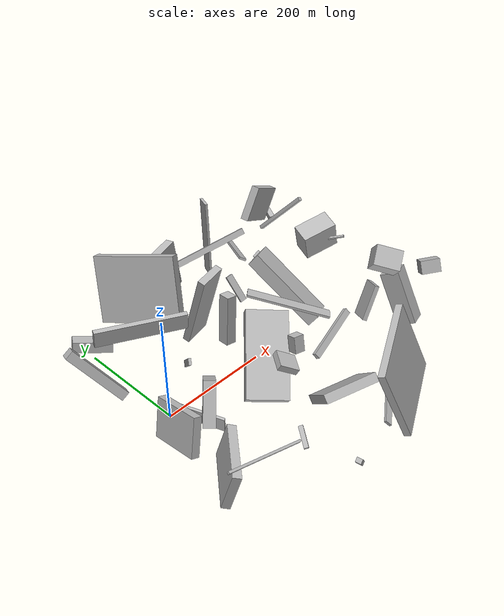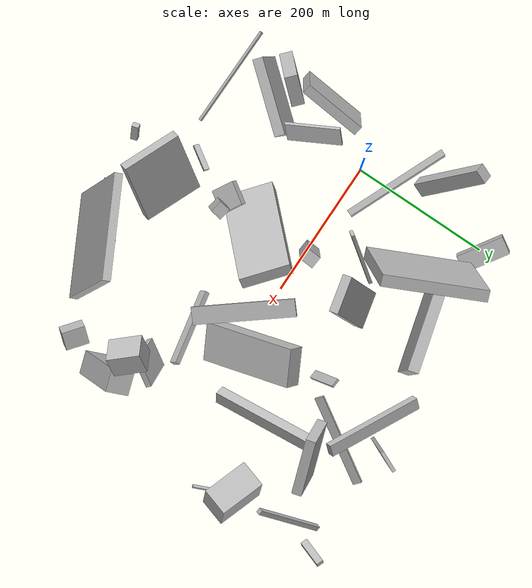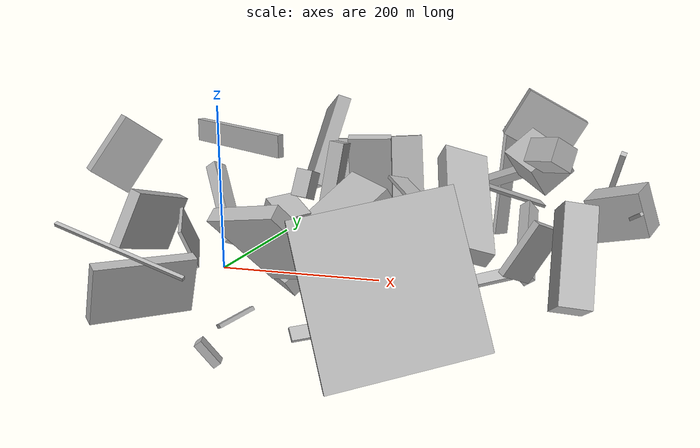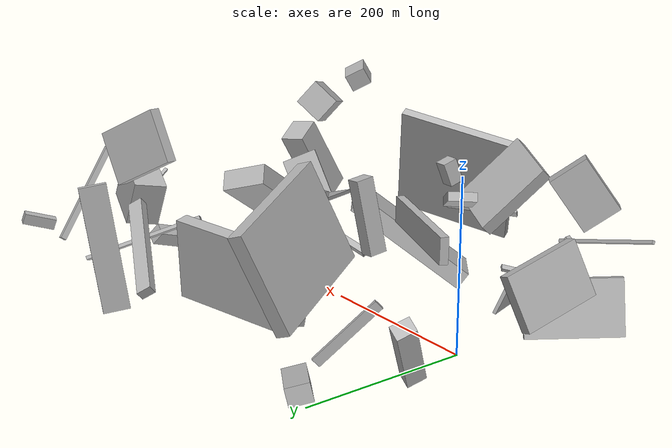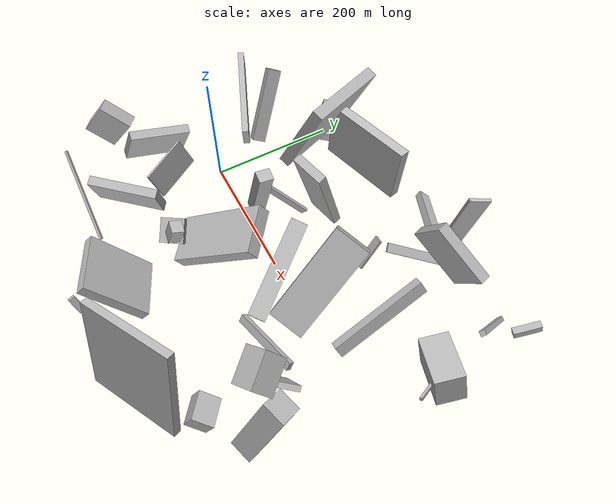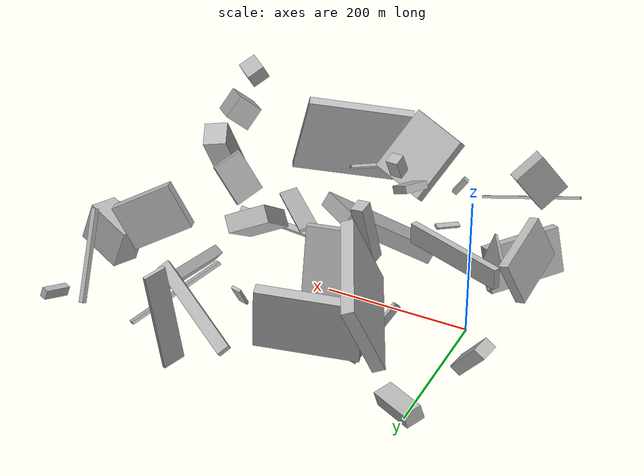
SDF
<sdf version="1.6">
 <world name="default">
  <scene>
   <sky><clouds><speed>12</speed></clouds></sky>
   <ambient>0.4 0.4 0.4 1</ambient>
   <background>0.7 0.7 0.7 1</background>
   <shadows>1</shadows>
  </scene>
  <gravity>0 0 -9.8066</gravity>
  <magnetic_field>6e-06 2.3e-05 -4.2e-05</magnetic_field>
  <physics default="0" name="default_physics" type="ode">
   <ode>
    <solver>
     <type>quick</type>
     <iters>10</iters>
     <sor>1.0</sor>
     <use_dynamic_moi_rescaling>0</use_dynamic_moi_rescaling>
    </solver>
    <constraints>
     <cfm>0</cfm>
     <erp>0.2</erp>
     <contact_max_correcting_vel>100</contact_max_correcting_vel>
     <contact_surface_layer>0.001</contact_surface_layer>
    </constraints>
   </ode>
   <max_step_size>0.004</max_step_size>
   <real_time_factor>1</real_time_factor>
   <real_time_update_rate>250</real_time_update_rate>
  </physics>
  <light name="sun" type="directional">
   <pose>0 0 10 0 0 0</pose>
   <diffuse>0.8 0.8 0.8 1</diffuse>
   <specular>0.2 0.2 0.2 1</specular>
   <attenuation>
    <range>1000</range>
    <constant>0.9</constant>
    <linear>0.01</linear>
    <quadratic>0.001</quadratic>
   </attenuation>
   <direction>-0.5 0.1 -0.9</direction>
  </light>
  <model name="building_1">
   <static>0</static>
   <pose>264.65417013962434 120.87720060441922 46.841637767092216 1.3394590897211187 0.5970818312010558 1.365465678384297</pose>
   <link name="link">
    <gravity>0</gravity>
    <pose>0 0 6.5 0 0 0</pose>
    <collision name="collision"><geometry><box><size>4 54 13</size></box></geometry></collision>
    <visual name="visual">
     <cast_shadows>0</cast_shadows>
     <geometry><box><size>4 54 13</size></box></geometry>
     <material>
      <script>
       <uri>model://HANNAS_wall/materials/scripts</uri>
       <uri>model://HANNAS_wall/materials/textures</uri>
       <name>vrc/HANNAS_wall</name>
      </script>
     </material>
    </visual>
   </link>
  </model>
  <model name="building_2">
   <static>0</static>
   <pose>-1.1243052867465284 -218.5558803408016 80.56658816465459 -2.6614298224933126 0.2956590415015765 -0.038150688404667635</pose>
   <link name="link">
    <gravity>0</gravity>
    <pose>0 0 2.0 0 0 0</pose>
    <collision name="collision"><geometry><box><size>150 4 4</size></box></geometry></collision>
    <visual name="visual">
     <cast_shadows>0</cast_shadows>
     <geometry><box><size>150 4 4</size></box></geometry>
     <material>
      <script>
       <uri>model://HANNAS_wall/materials/scripts</uri>
       <uri>model://HANNAS_wall/materials/textures</uri>
       <name>vrc/HANNAS_wall</name>
      </script>
     </material>
    </visual>
   </link>
  </model>
  <model name="building_3">
   <static>0</static>
   <pose>370.11283969063817 -93.44159929861299 45.57549501993294 0.40359220446751193 -0.38755455354223767 2.412546391551703</pose>
   <link name="link">
    <gravity>0</gravity>
    <pose>0 0 32.0 0 0 0</pose>
    <collision name="collision"><geometry><box><size>8 43 64</size></box></geometry></collision>
    <visual name="visual">
     <cast_shadows>0</cast_shadows>
     <geometry><box><size>8 43 64</size></box></geometry>
     <material>
      <script>
       <uri>model://HANNAS_wall/materials/scripts</uri>
       <uri>model://HANNAS_wall/materials/textures</uri>
       <name>vrc/HANNAS_wall</name>
      </script>
     </material>
    </visual>
   </link>
  </model>
  <model name="building_4">
   <static>0</static>
   <pose>161.27041576359437 -60.61962670454271 64.87615860525187 0.15338354658681927 -0.6272980577001566 0.7862883591621183</pose>
   <link name="link">
    <gravity>0</gravity>
    <pose>0 0 10.5 0 0 0</pose>
    <collision name="collision"><geometry><box><size>150 72 21</size></box></geometry></collision>
    <visual name="visual">
     <cast_shadows>0</cast_shadows>
     <geometry><box><size>150 72 21</size></box></geometry>
     <material>
      <script>
       <uri>model://HANNAS_wall/materials/scripts</uri>
       <uri>model://HANNAS_wall/materials/textures</uri>
       <name>vrc/HANNAS_wall</name>
      </script>
     </material>
    </visual>
   </link>
  </model>
  <model name="building_5">
   <static>0</static>
   <pose>-57.66684869527697 104.5913610423325 59.57226166315546 2.0532880033404837 0.589724054410156 3.055835762885318</pose>
   <link name="link">
    <gravity>0</gravity>
    <pose>0 0 11.0 0 0 0</pose>
    <collision name="collision"><geometry><box><size>17 121 22</size></box></geometry></collision>
    <visual name="visual">
     <cast_shadows>0</cast_shadows>
     <geometry><box><size>17 121 22</size></box></geometry>
     <material>
      <script>
       <uri>model://HANNAS_wall/materials/scripts</uri>
       <uri>model://HANNAS_wall/materials/textures</uri>
       <name>vrc/HANNAS_wall</name>
      </script>
     </material>
    </visual>
   </link>
  </model>
  <model name="building_6">
   <static>0</static>
   <pose>-24.554416147968016 225.41995911952174 31.69661805715866 2.227424231187485 -1.2954322784982117 0.35244660421734947</pose>
   <link name="link">
    <gravity>0</gravity>
    <pose>0 0 34.5 0 0 0</pose>
    <collision name="collision"><geometry><box><size>20 26 69</size></box></geometry></collision>
    <visual name="visual">
     <cast_shadows>0</cast_shadows>
     <geometry><box><size>20 26 69</size></box></geometry>
     <material>
      <script>
       <uri>model://HANNAS_wall/materials/scripts</uri>
       <uri>model://HANNAS_wall/materials/textures</uri>
       <name>vrc/HANNAS_wall</name>
      </script>
     </material>
    </visual>
   </link>
  </model>
  <model name="building_7">
   <static>0</static>
   <pose>487.45415841680244 70.2006914979045 80.44660225447244 2.032849156782501 -0.3906397162849317 -1.1788985071095122</pose>
   <link name="link">
    <gravity>0</gravity>
    <pose>0 0 2.0 0 0 0</pose>
    <collision name="collision"><geometry><box><size>40 4 4</size></box></geometry></collision>
    <visual name="visual">
     <cast_shadows>0</cast_shadows>
     <geometry><box><size>40 4 4</size></box></geometry>
     <material>
      <script>
       <uri>model://HANNAS_wall/materials/scripts</uri>
       <uri>model://HANNAS_wall/materials/textures</uri>
       <name>vrc/HANNAS_wall</name>
      </script>
     </material>
    </visual>
   </link>
  </model>
  <model name="building_8">
   <static>0</static>
   <pose>329.58136777365075 182.87797569043536 72.9236808925061 0.3719026513564719 -0.4492062356570631 2.4186470516416243</pose>
   <link name="link">
    <gravity>0</gravity>
    <pose>0 0 2.0 0 0 0</pose>
    <collision name="collision"><geometry><box><size>13 137 4</size></box></geometry></collision>
    <visual name="visual">
     <cast_shadows>0</cast_shadows>
     <geometry><box><size>13 137 4</size></box></geometry>
     <material>
      <script>
       <uri>model://HANNAS_wall/materials/scripts</uri>
       <uri>model://HANNAS_wall/materials/textures</uri>
       <name>vrc/HANNAS_wall</name>
      </script>
     </material>
    </visual>
   </link>
  </model>
  <model name="building_9">
   <static>0</static>
   <pose>-9.143379285103684 -160.3997060298682 51.51496979779514 -2.850360010394594 0.049804479186887546 0.8712152730884777</pose>
   <link name="link">
    <gravity>0</gravity>
    <pose>0 0 33.0 0 0 0</pose>
    <collision name="collision"><geometry><box><size>111 15 66</size></box></geometry></collision>
    <visual name="visual">
     <cast_shadows>0</cast_shadows>
     <geometry><box><size>111 15 66</size></box></geometry>
     <material>
      <script>
       <uri>model://HANNAS_wall/materials/scripts</uri>
       <uri>model://HANNAS_wall/materials/textures</uri>
       <name>vrc/HANNAS_wall</name>
      </script>
     </material>
    </visual>
   </link>
  </model>
  <model name="building_10">
   <static>0</static>
   <pose>349.4131064524281 -213.83706075275848 88.64599141502698 1.7531525362991258 -0.3445882368417101 -1.1436223626511424</pose>
   <link name="link">
    <gravity>0</gravity>
    <pose>0 0 75.0 0 0 0</pose>
    <collision name="collision"><geometry><box><size>12 150 150</size></box></geometry></collision>
    <visual name="visual">
     <cast_shadows>0</cast_shadows>
     <geometry><box><size>12 150 150</size></box></geometry>
     <material>
      <script>
       <uri>model://HANNAS_wall/materials/scripts</uri>
       <uri>model://HANNAS_wall/materials/textures</uri>
       <name>vrc/HANNAS_wall</name>
      </script>
     </material>
    </visual>
   </link>
  </model>
  <model name="building_11">
   <static>0</static>
   <pose>69.61905917873801 23.910715645950102 150.7538127151662 0.5565364268158581 -1.4982112673737775 -0.9645261996141294</pose>
   <link name="link">
    <gravity>0</gravity>
    <pose>0 0 75.0 0 0 0</pose>
    <collision name="collision"><geometry><box><size>28 9 150</size></box></geometry></collision>
    <visual name="visual">
     <cast_shadows>0</cast_shadows>
     <geometry><box><size>28 9 150</size></box></geometry>
     <material>
      <script>
       <uri>model://HANNAS_wall/materials/scripts</uri>
       <uri>model://HANNAS_wall/materials/textures</uri>
       <name>vrc/HANNAS_wall</name>
      </script>
     </material>
    </visual>
   </link>
  </model>
  <model name="building_12">
   <static>0</static>
   <pose>320.65590928067206 31.00524208722694 86.40382656567743 1.1086294469293019 -0.8473351064219268 -0.7244089674561238</pose>
   <link name="link">
    <gravity>0</gravity>
    <pose>0 0 27.0 0 0 0</pose>
    <collision name="collision"><geometry><box><size>24 150 54</size></box></geometry></collision>
    <visual name="visual">
     <cast_shadows>0</cast_shadows>
     <geometry><box><size>24 150 54</size></box></geometry>
     <material>
      <script>
       <uri>model://HANNAS_wall/materials/scripts</uri>
       <uri>model://HANNAS_wall/materials/textures</uri>
       <name>vrc/HANNAS_wall</name>
      </script>
     </material>
    </visual>
   </link>
  </model>
  <model name="building_13">
   <static>0</static>
   <pose>-51.491923196179116 -154.7414089751964 135.04168425434662 0.6231379120059123 -0.052380239026056416 2.404289366624711</pose>
   <link name="link">
    <gravity>0</gravity>
    <pose>0 0 33.5 0 0 0</pose>
    <collision name="collision"><geometry><box><size>18 46 67</size></box></geometry></collision>
    <visual name="visual">
     <cast_shadows>0</cast_shadows>
     <geometry><box><size>18 46 67</size></box></geometry>
     <material>
      <script>
       <uri>model://HANNAS_wall/materials/scripts</uri>
       <uri>model://HANNAS_wall/materials/textures</uri>
       <name>vrc/HANNAS_wall</name>
      </script>
     </material>
    </visual>
   </link>
  </model>
  <model name="building_14">
   <static>0</static>
   <pose>66.10803317892115 135.80814159135062 80.95652774012393 0.234835418727739 -0.3380685198491294 -2.768737690360452</pose>
   <link name="link">
    <gravity>0</gravity>
    <pose>0 0 58.5 0 0 0</pose>
    <collision name="collision"><geometry><box><size>17 150 117</size></box></geometry></collision>
    <visual name="visual">
     <cast_shadows>0</cast_shadows>
     <geometry><box><size>17 150 117</size></box></geometry>
     <material>
      <script>
       <uri>model://HANNAS_wall/materials/scripts</uri>
       <uri>model://HANNAS_wall/materials/textures</uri>
       <name>vrc/HANNAS_wall</name>
      </script>
     </material>
    </visual>
   </link>
  </model>
  <model name="building_15">
   <static>0</static>
   <pose>184.77672405507917 -190.38781784934162 63.9132013275298 0.7758810078253078 -0.1696984598728655 -0.3931629045605423</pose>
   <link name="link">
    <gravity>0</gravity>
    <pose>0 0 49.0 0 0 0</pose>
    <collision name="collision"><geometry><box><size>86 15 98</size></box></geometry></collision>
    <visual name="visual">
     <cast_shadows>0</cast_shadows>
     <geometry><box><size>86 15 98</size></box></geometry>
     <material>
      <script>
       <uri>model://HANNAS_wall/materials/scripts</uri>
       <uri>model://HANNAS_wall/materials/textures</uri>
       <name>vrc/HANNAS_wall</name>
      </script>
     </material>
    </visual>
   </link>
  </model>
  <model name="building_16">
   <static>0</static>
   <pose>408.6401112568035 -133.13363413408027 163.05139194569585 1.156085918716804 -0.8302209854719 -2.1050059205672476</pose>
   <link name="link">
    <gravity>0</gravity>
    <pose>0 0 23.5 0 0 0</pose>
    <collision name="collision"><geometry><box><size>34 36 47</size></box></geometry></collision>
    <visual name="visual">
     <cast_shadows>0</cast_shadows>
     <geometry><box><size>34 36 47</size></box></geometry>
     <material>
      <script>
       <uri>model://HANNAS_wall/materials/scripts</uri>
       <uri>model://HANNAS_wall/materials/textures</uri>
       <name>vrc/HANNAS_wall</name>
      </script>
     </material>
    </visual>
   </link>
  </model>
  <model name="building_17">
   <static>0</static>
   <pose>238.71793084535076 -252.6732646661468 43.90860368045658 -3.0757381116950575 -0.8068192313282246 -0.9773601882043383</pose>
   <link name="link">
    <gravity>0</gravity>
    <pose>0 0 6.5 0 0 0</pose>
    <collision name="collision"><geometry><box><size>4 90 13</size></box></geometry></collision>
    <visual name="visual">
     <cast_shadows>0</cast_shadows>
     <geometry><box><size>4 90 13</size></box></geometry>
     <material>
      <script>
       <uri>model://HANNAS_wall/materials/scripts</uri>
       <uri>model://HANNAS_wall/materials/textures</uri>
       <name>vrc/HANNAS_wall</name>
      </script>
     </material>
    </visual>
   </link>
  </model>
  <model name="building_18">
   <static>0</static>
   <pose>288.1092108329577 214.28629620343133 87.58938519105347 2.7065519967841065 0.5472998542499646 0.8496323521582189</pose>
   <link name="link">
    <gravity>0</gravity>
    <pose>0 0 5.5 0 0 0</pose>
    <collision name="collision"><geometry><box><size>17 146 11</size></box></geometry></collision>
    <visual name="visual">
     <cast_shadows>0</cast_shadows>
     <geometry><box><size>17 146 11</size></box></geometry>
     <material>
      <script>
       <uri>model://HANNAS_wall/materials/scripts</uri>
       <uri>model://HANNAS_wall/materials/textures</uri>
       <name>vrc/HANNAS_wall</name>
      </script>
     </material>
    </visual>
   </link>
  </model>
  <model name="building_19">
   <static>0</static>
   <pose>357.66043287218673 78.34960344610734 46.77560241088954 2.724885671815251 0.5931456113368304 2.992095032660603</pose>
   <link name="link">
    <gravity>0</gravity>
    <pose>0 0 9.5 0 0 0</pose>
    <collision name="collision"><geometry><box><size>15 150 19</size></box></geometry></collision>
    <visual name="visual">
     <cast_shadows>0</cast_shadows>
     <geometry><box><size>15 150 19</size></box></geometry>
     <material>
      <script>
       <uri>model://HANNAS_wall/materials/scripts</uri>
       <uri>model://HANNAS_wall/materials/textures</uri>
       <name>vrc/HANNAS_wall</name>
      </script>
     </material>
    </visual>
   </link>
  </model>
  <model name="building_20">
   <static>0</static>
   <pose>-2.8873317055444243 -80.77121245773291 57.876272984324736 -0.3825359106057848 -1.175891790192871 -2.309009767996099</pose>
   <link name="link">
    <gravity>0</gravity>
    <pose>0 0 2.0 0 0 0</pose>
    <collision name="collision"><geometry><box><size>47 77 4</size></box></geometry></collision>
    <visual name="visual">
     <cast_shadows>0</cast_shadows>
     <geometry><box><size>47 77 4</size></box></geometry>
     <material>
      <script>
       <uri>model://HANNAS_wall/materials/scripts</uri>
       <uri>model://HANNAS_wall/materials/textures</uri>
       <name>vrc/HANNAS_wall</name>
      </script>
     </material>
    </visual>
   </link>
  </model>
  <model name="building_21">
   <static>0</static>
   <pose>300.85806447079625 -78.15053527069725 82.92937036003481 1.325103229003473 -0.21755082906414358 -2.4259271116641616</pose>
   <link name="link">
    <gravity>0</gravity>
    <pose>0 0 73.0 0 0 0</pose>
    <collision name="collision"><geometry><box><size>25 4 146</size></box></geometry></collision>
    <visual name="visual">
     <cast_shadows>0</cast_shadows>
     <geometry><box><size>25 4 146</size></box></geometry>
     <material>
      <script>
       <uri>model://HANNAS_wall/materials/scripts</uri>
       <uri>model://HANNAS_wall/materials/textures</uri>
       <name>vrc/HANNAS_wall</name>
      </script>
     </material>
    </visual>
   </link>
  </model>
  <model name="building_22">
   <static>0</static>
   <pose>169.38520124707395 -128.30978094768386 136.41498739656512 -1.2650034712803542 -1.2324373501744195 1.1074655191511653</pose>
   <link name="link">
    <gravity>0</gravity>
    <pose>0 0 9.0 0 0 0</pose>
    <collision name="collision"><geometry><box><size>28 17 18</size></box></geometry></collision>
    <visual name="visual">
     <cast_shadows>0</cast_shadows>
     <geometry><box><size>28 17 18</size></box></geometry>
     <material>
      <script>
       <uri>model://HANNAS_wall/materials/scripts</uri>
       <uri>model://HANNAS_wall/materials/textures</uri>
       <name>vrc/HANNAS_wall</name>
      </script>
     </material>
    </visual>
   </link>
  </model>
  <model name="building_23">
   <static>0</static>
   <pose>456.9809429270192 183.01806435884396 92.19531583774022 0.8953722671181252 -0.31306656001400995 3.052208111457566</pose>
   <link name="link">
    <gravity>0</gravity>
    <pose>0 0 3.5 0 0 0</pose>
    <collision name="collision"><geometry><box><size>7 124 7</size></box></geometry></collision>
    <visual name="visual">
     <cast_shadows>0</cast_shadows>
     <geometry><box><size>7 124 7</size></box></geometry>
     <material>
      <script>
       <uri>model://HANNAS_wall/materials/scripts</uri>
       <uri>model://HANNAS_wall/materials/textures</uri>
       <name>vrc/HANNAS_wall</name>
      </script>
     </material>
    </visual>
   </link>
  </model>
  <model name="building_24">
   <static>0</static>
   <pose>424.72387492424775 -117.60995033922647 72.9378930846339 1.086547581177914 0.15725063370222442 0.31420099192296425</pose>
   <link name="link">
    <gravity>0</gravity>
    <pose>0 0 17.0 0 0 0</pose>
    <collision name="collision"><geometry><box><size>33 100 34</size></box></geometry></collision>
    <visual name="visual">
     <cast_shadows>0</cast_shadows>
     <geometry><box><size>33 100 34</size></box></geometry>
     <material>
      <script>
       <uri>model://HANNAS_wall/materials/scripts</uri>
       <uri>model://HANNAS_wall/materials/textures</uri>
       <name>vrc/HANNAS_wall</name>
      </script>
     </material>
    </visual>
   </link>
  </model>
  <model name="building_25">
   <static>0</static>
   <pose>-60.03427444166033 -89.05211291016444 45.27885600691116 -0.2708030645358527 0.3116965981728064 -0.15965699041634565</pose>
   <link name="link">
    <gravity>0</gravity>
    <pose>0 0 33.0 0 0 0</pose>
    <collision name="collision"><geometry><box><size>14 93 66</size></box></geometry></collision>
    <visual name="visual">
     <cast_shadows>0</cast_shadows>
     <geometry><box><size>14 93 66</size></box></geometry>
     <material>
      <script>
       <uri>model://HANNAS_wall/materials/scripts</uri>
       <uri>model://HANNAS_wall/materials/textures</uri>
       <name>vrc/HANNAS_wall</name>
      </script>
     </material>
    </visual>
   </link>
  </model>
  <model name="building_26">
   <static>0</static>
   <pose>139.31730869499344 188.46557610304436 52.45806481397177 0.0964670992149971 0.04497377435881304 -2.8810308696310813</pose>
   <link name="link">
    <gravity>0</gravity>
    <pose>0 0 45.0 0 0 0</pose>
    <collision name="collision"><geometry><box><size>136 16 90</size></box></geometry></collision>
    <visual name="visual">
     <cast_shadows>0</cast_shadows>
     <geometry><box><size>136 16 90</size></box></geometry>
     <material>
      <script>
       <uri>model://HANNAS_wall/materials/scripts</uri>
       <uri>model://HANNAS_wall/materials/textures</uri>
       <name>vrc/HANNAS_wall</name>
      </script>
     </material>
    </visual>
   </link>
  </model>
  <model name="building_27">
   <static>0</static>
   <pose>151.5748692596917 7.9381953625137776 116.74860150881398 -0.6900302350485106 -1.378655026054156 0.6166424791178927</pose>
   <link name="link">
    <gravity>0</gravity>
    <pose>0 0 9.0 0 0 0</pose>
    <collision name="collision"><geometry><box><size>87 21 18</size></box></geometry></collision>
    <visual name="visual">
     <cast_shadows>0</cast_shadows>
     <geometry><box><size>87 21 18</size></box></geometry>
     <material>
      <script>
       <uri>model://HANNAS_wall/materials/scripts</uri>
       <uri>model://HANNAS_wall/materials/textures</uri>
       <name>vrc/HANNAS_wall</name>
      </script>
     </material>
    </visual>
   </link>
  </model>
  <model name="building_28">
   <static>0</static>
   <pose>440.4137547727824 113.36751043272582 67.97826182787679 1.3202498622646353 -0.1811305849474745 1.2765486562151778</pose>
   <link name="link">
    <gravity>0</gravity>
    <pose>0 0 33.5 0 0 0</pose>
    <collision name="collision"><geometry><box><size>40 55 67</size></box></geometry></collision>
    <visual name="visual">
     <cast_shadows>0</cast_shadows>
     <geometry><box><size>40 55 67</size></box></geometry>
     <material>
      <script>
       <uri>model://HANNAS_wall/materials/scripts</uri>
       <uri>model://HANNAS_wall/materials/textures</uri>
       <name>vrc/HANNAS_wall</name>
      </script>
     </material>
    </visual>
   </link>
  </model>
  <model name="building_29">
   <static>0</static>
   <pose>137.57783702722298 -123.89696249662364 104.17061934274138 -0.5138506645015221 0.06028213426708388 -2.161588572322811</pose>
   <link name="link">
    <gravity>0</gravity>
    <pose>0 0 5.5 0 0 0</pose>
    <collision name="collision"><geometry><box><size>34 35 11</size></box></geometry></collision>
    <visual name="visual">
     <cast_shadows>0</cast_shadows>
     <geometry><box><size>34 35 11</size></box></geometry>
     <material>
      <script>
       <uri>model://HANNAS_wall/materials/scripts</uri>
       <uri>model://HANNAS_wall/materials/textures</uri>
       <name>vrc/HANNAS_wall</name>
      </script>
     </material>
    </visual>
   </link>
  </model>
  <model name="building_30">
   <static>0</static>
   <pose>408.40688430829414 -194.83606685359126 177.64558567025063 -0.13397359608706735 0.4880293163378495 0.8442482841965802</pose>
   <link name="link">
    <gravity>0</gravity>
    <pose>0 0 11.0 0 0 0</pose>
    <collision name="collision"><geometry><box><size>26 32 22</size></box></geometry></collision>
    <visual name="visual">
     <cast_shadows>0</cast_shadows>
     <geometry><box><size>26 32 22</size></box></geometry>
     <material>
      <script>
       <uri>model://HANNAS_wall/materials/scripts</uri>
       <uri>model://HANNAS_wall/materials/textures</uri>
       <name>vrc/HANNAS_wall</name>
      </script>
     </material>
    </visual>
   </link>
  </model>
  <model name="building_31">
   <static>0</static>
   <pose>317.4604934876802 -77.42034023472489 23.992237248222022 0.6952793286734742 0.25402639896466706 -2.9389018024384943</pose>
   <link name="link">
    <gravity>0</gravity>
    <pose>0 0 6.0 0 0 0</pose>
    <collision name="collision"><geometry><box><size>111 8 12</size></box></geometry></collision>
    <visual name="visual">
     <cast_shadows>0</cast_shadows>
     <geometry><box><size>111 8 12</size></box></geometry>
     <material>
      <script>
       <uri>model://HANNAS_wall/materials/scripts</uri>
       <uri>model://HANNAS_wall/materials/textures</uri>
       <name>vrc/HANNAS_wall</name>
      </script>
     </material>
    </visual>
   </link>
  </model>
  <model name="building_32">
   <static>0</static>
   <pose>109.13330236747777 -193.49046383838427 14.436618774080204 -2.86775412273631 -0.342713227376999 -0.6770398970262057</pose>
   <link name="link">
    <gravity>0</gravity>
    <pose>0 0 2.0 0 0 0</pose>
    <collision name="collision"><geometry><box><size>8 40 4</size></box></geometry></collision>
    <visual name="visual">
     <cast_shadows>0</cast_shadows>
     <geometry><box><size>8 40 4</size></box></geometry>
     <material>
      <script>
       <uri>model://HANNAS_wall/materials/scripts</uri>
       <uri>model://HANNAS_wall/materials/textures</uri>
       <name>vrc/HANNAS_wall</name>
      </script>
     </material>
    </visual>
   </link>
  </model>
  <model name="building_33">
   <static>0</static>
   <pose>82.53895834988444 39.82195568899662 41.11766308089307 -2.3454061082596405 0.009101451363295196 -0.5898624066650249</pose>
   <link name="link">
    <gravity>0</gravity>
    <pose>0 0 48.0 0 0 0</pose>
    <collision name="collision"><geometry><box><size>5 12 96</size></box></geometry></collision>
    <visual name="visual">
     <cast_shadows>0</cast_shadows>
     <geometry><box><size>5 12 96</size></box></geometry>
     <material>
      <script>
       <uri>model://HANNAS_wall/materials/scripts</uri>
       <uri>model://HANNAS_wall/materials/textures</uri>
       <name>vrc/HANNAS_wall</name>
      </script>
     </material>
    </visual>
   </link>
  </model>
  <model name="building_34">
   <static>0</static>
   <pose>406.849886238982 173.18458414364585 147.75432758254766 0.2534472167268221 -1.0459910043854848 0.044012628996547495</pose>
   <link name="link">
    <gravity>0</gravity>
    <pose>0 0 42.5 0 0 0</pose>
    <collision name="collision"><geometry><box><size>63 14 85</size></box></geometry></collision>
    <visual name="visual">
     <cast_shadows>0</cast_shadows>
     <geometry><box><size>63 14 85</size></box></geometry>
     <material>
      <script>
       <uri>model://HANNAS_wall/materials/scripts</uri>
       <uri>model://HANNAS_wall/materials/textures</uri>
       <name>vrc/HANNAS_wall</name>
      </script>
     </material>
    </visual>
   </link>
  </model>
  <model name="building_35">
   <static>0</static>
   <pose>161.47243672813147 99.95156878214542 89.14996224228403 -3.1052195728223264 -1.2955656025917903 -1.3795158213888243</pose>
   <link name="link">
    <gravity>0</gravity>
    <pose>0 0 6.5 0 0 0</pose>
    <collision name="collision"><geometry><box><size>150 53 13</size></box></geometry></collision>
    <visual name="visual">
     <cast_shadows>0</cast_shadows>
     <geometry><box><size>150 53 13</size></box></geometry>
     <material>
      <script>
       <uri>model://HANNAS_wall/materials/scripts</uri>
       <uri>model://HANNAS_wall/materials/textures</uri>
       <name>vrc/HANNAS_wall</name>
      </script>
     </material>
    </visual>
   </link>
  </model>
  <model name="building_36">
   <static>0</static>
   <pose>472.61640608903036 221.51199884485794 59.186167974437986 -0.3543379566481522 1.2336814736450563 0.8668342800888796</pose>
   <link name="link">
    <gravity>0</gravity>
    <pose>0 0 19.0 0 0 0</pose>
    <collision name="collision"><geometry><box><size>13 10 38</size></box></geometry></collision>
    <visual name="visual">
     <cast_shadows>0</cast_shadows>
     <geometry><box><size>13 10 38</size></box></geometry>
     <material>
      <script>
       <uri>model://HANNAS_wall/materials/scripts</uri>
       <uri>model://HANNAS_wall/materials/textures</uri>
       <name>vrc/HANNAS_wall</name>
      </script>
     </material>
    </visual>
   </link>
  </model>
  <model name="building_37">
   <static>0</static>
   <pose>314.79893034782657 242.6100680246209 81.43285713836347 1.5523044673628947 -0.1342450662492771 -1.994569703338472</pose>
   <link name="link">
    <gravity>0</gravity>
    <pose>0 0 2.5 0 0 0</pose>
    <collision name="collision"><geometry><box><size>31 150 5</size></box></geometry></collision>
    <visual name="visual">
     <cast_shadows>0</cast_shadows>
     <geometry><box><size>31 150 5</size></box></geometry>
     <material>
      <script>
       <uri>model://HANNAS_wall/materials/scripts</uri>
       <uri>model://HANNAS_wall/materials/textures</uri>
       <name>vrc/HANNAS_wall</name>
      </script>
     </material>
    </visual>
   </link>
  </model>
  <model name="building_38">
   <static>0</static>
   <pose>129.59238228607353 -285.18603826748904 16.318022911162117 -1.695246807632654 0.6300215807379099 -2.9352219444300984</pose>
   <link name="link">
    <gravity>0</gravity>
    <pose>0 0 5.0 0 0 0</pose>
    <collision name="collision"><geometry><box><size>8 27 10</size></box></geometry></collision>
    <visual name="visual">
     <cast_shadows>0</cast_shadows>
     <geometry><box><size>8 27 10</size></box></geometry>
     <material>
      <script>
       <uri>model://HANNAS_wall/materials/scripts</uri>
       <uri>model://HANNAS_wall/materials/textures</uri>
       <name>vrc/HANNAS_wall</name>
      </script>
     </material>
    </visual>
   </link>
  </model>
 </world>
</sdf>
